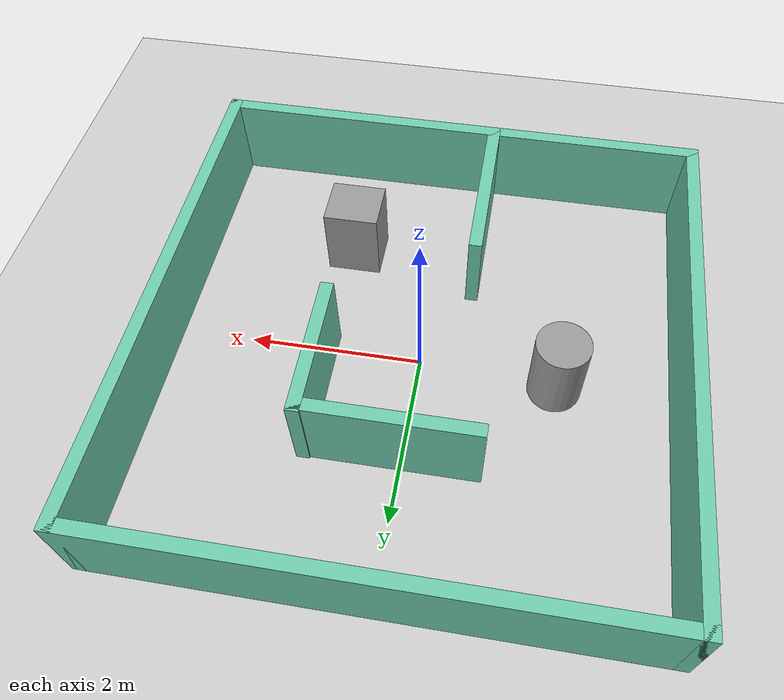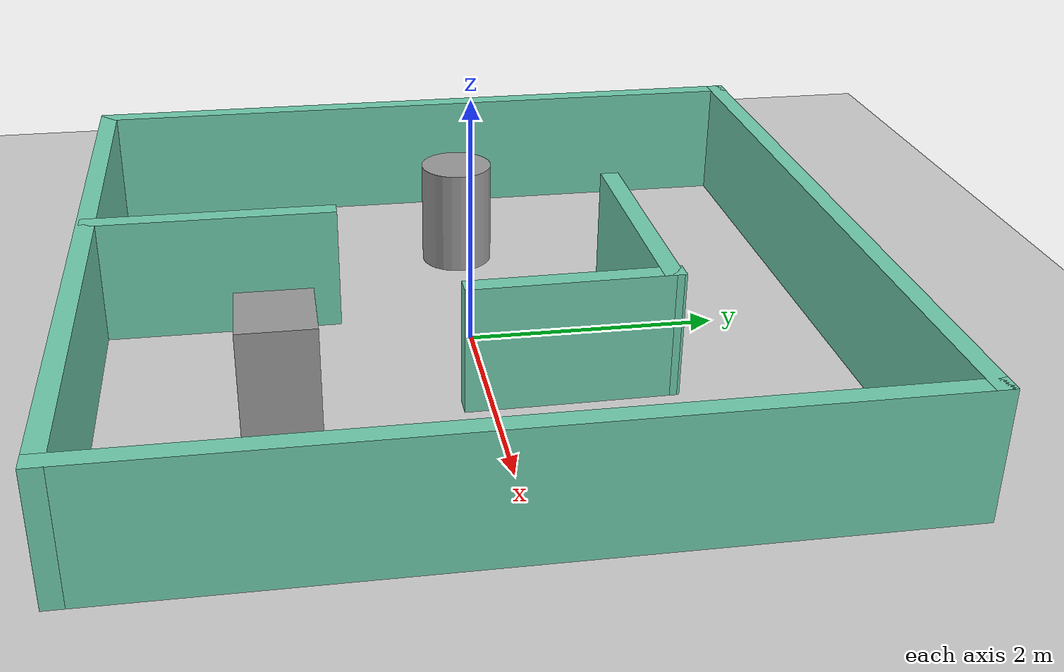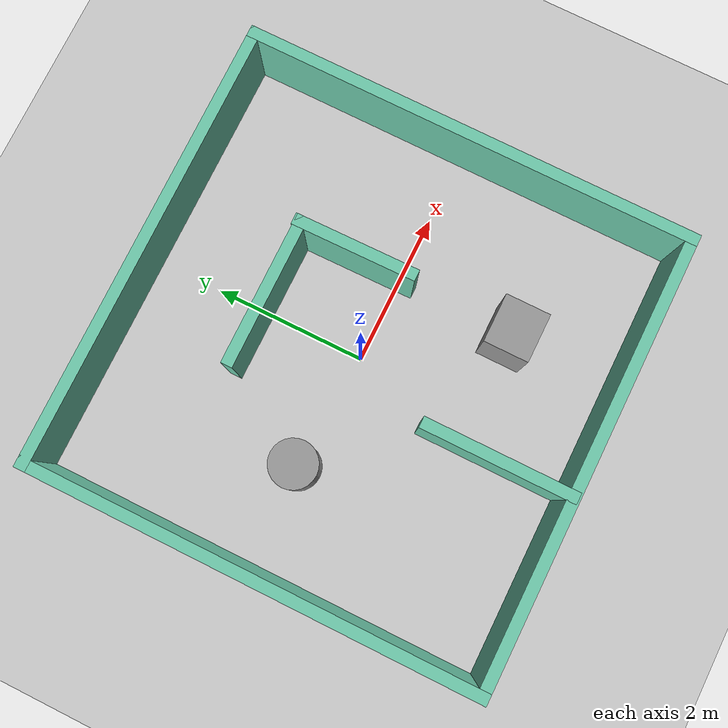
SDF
<sdf version="1.7">
 <world name="default">
  <light name="sun" type="directional">
   <pose>0 0 10 0 -0 0</pose>
   <diffuse>0.8 0.8 0.8 1</diffuse>
   <specular>0.2 0.2 0.2 1</specular>
   <attenuation>
    <range>1000</range>
    <constant>0.9</constant>
    <linear>0.01</linear>
    <quadratic>0.001</quadratic>
   </attenuation>
   <direction>-0.5 0.1 -0.9</direction>
   <spot><inner_angle>0</inner_angle><outer_angle>0</outer_angle><falloff>0</falloff></spot>
  </light>
  <model name="ground_plane">
   <static>1</static>
   <link name="link">
    <collision name="collision">
     <geometry><plane><normal>0 0 1</normal><size>100 100</size></plane></geometry>
     <surface>
      <contact><collide_bitmask>65535</collide_bitmask></contact>
      <friction><ode><mu>100</mu><mu2>50</mu2></ode></friction>
     </surface>
    </collision>
    <visual name="visual">
     <cast_shadows>0</cast_shadows>
     <geometry><plane><normal>0 0 1</normal><size>100 100</size></plane></geometry>
     <material>
      <script><uri>file://media/materials/scripts/gazebo.material</uri><name>Gazebo/Grey</name></script>
     </material>
    </visual>
   </link>
  </model>
  <gravity>0 0 -9.8</gravity>
  <magnetic_field>6e-06 2.3e-05 -4.2e-05</magnetic_field>
  <atmosphere type="adiabatic"/>
  <physics type="ode">
   <max_step_size>0.001</max_step_size>
   <real_time_factor>1</real_time_factor>
   <real_time_update_rate>1000</real_time_update_rate>
  </physics>
  <scene><ambient>0.4 0.4 0.4 1</ambient><background>0.7 0.7 0.7 1</background><shadows>1</shadows></scene>
  <spherical_coordinates>
   <surface_model>EARTH_WGS84</surface_model>
   <latitude_deg>0</latitude_deg>
   <longitude_deg>0</longitude_deg>
   <elevation>0</elevation>
   <heading_deg>0</heading_deg>
  </spherical_coordinates>
  <model name="training_gazebo_place">
   <pose>-0.006 -0.034 0 0 -0 0</pose>
   <link name="Wall_0">
    <collision name="Wall_0_Collision">
     <geometry><box><size>6 0.15 1</size></box></geometry>
     <pose>0 0 0.5 0 -0 0</pose>
    </collision>
    <visual name="Wall_0_Visual">
     <pose>0 0 0.5 0 -0 0</pose>
     <geometry><box><size>6 0.15 1</size></box></geometry>
     <material>
      <script><uri>file://media/materials/scripts/gazebo.material</uri><name>Gazebo/Grey</name></script>
      <ambient>0.435294 0.796078 0.67451 1</ambient>
     </material>
     <meta><layer>0</layer></meta>
    </visual>
    <pose>0 -2.925 0 0 -0 0</pose>
   </link>
   <link name="Wall_14">
    <collision name="Wall_14_Collision">
     <geometry><box><size>2 0.15 1</size></box></geometry>
     <pose>0 0 0.5 0 -0 0</pose>
    </collision>
    <visual name="Wall_14_Visual">
     <pose>0 0 0.5 0 -0 0</pose>
     <geometry><box><size>2 0.15 1</size></box></geometry>
     <material>
      <script><uri>file://media/materials/scripts/gazebo.material</uri><name>Gazebo/Grey</name></script>
      <ambient>0.435294 0.796078 0.67451 1</ambient>
     </material>
     <meta><layer>0</layer></meta>
    </visual>
    <pose>0.12408 1.34848 0 0 -0 0</pose>
   </link>
   <link name="Wall_15">
    <collision name="Wall_15_Collision">
     <geometry><box><size>1.62424 0.15 1</size></box></geometry>
     <pose>0 0 0.5 0 -0 0</pose>
    </collision>
    <visual name="Wall_15_Visual">
     <pose>0 0 0.5 0 -0 0</pose>
     <geometry><box><size>1.62424 0.15 1</size></box></geometry>
     <material>
      <script><uri>file://media/materials/scripts/gazebo.material</uri><name>Gazebo/Grey</name></script>
      <ambient>0.435294 0.796078 0.67451 1</ambient>
     </material>
     <meta><layer>0</layer></meta>
    </visual>
    <pose>1.05783 0.629147 0 0 -0 -1.55893</pose>
   </link>
   <link name="Wall_2">
    <collision name="Wall_2_Collision">
     <geometry><box><size>6 0.15 1</size></box></geometry>
     <pose>0 0 0.5 0 -0 0</pose>
    </collision>
    <visual name="Wall_2_Visual">
     <pose>0 0 0.5 0 -0 0</pose>
     <geometry><box><size>6 0.15 1</size></box></geometry>
     <material>
      <script><uri>file://media/materials/scripts/gazebo.material</uri><name>Gazebo/Grey</name></script>
      <ambient>0.435294 0.796078 0.67451 1</ambient>
     </material>
     <meta><layer>0</layer></meta>
    </visual>
    <pose>-2.925 -0 0 0 -0 1.5708</pose>
   </link>
   <link name="Wall_3">
    <collision name="Wall_3_Collision">
     <geometry><box><size>6 0.15 1</size></box></geometry>
     <pose>0 0 0.5 0 -0 0</pose>
    </collision>
    <visual name="Wall_3_Visual">
     <pose>0 0 0.5 0 -0 0</pose>
     <geometry><box><size>6 0.15 1</size></box></geometry>
     <material>
      <script><uri>file://media/materials/scripts/gazebo.material</uri><name>Gazebo/Grey</name></script>
      <ambient>0.435294 0.796078 0.67451 1</ambient>
     </material>
     <meta><layer>0</layer></meta>
    </visual>
    <pose>0 2.925 0 0 -0 0</pose>
   </link>
   <link name="Wall_4">
    <collision name="Wall_4_Collision">
     <geometry><box><size>6 0.15 1</size></box></geometry>
     <pose>0 0 0.5 0 -0 0</pose>
    </collision>
    <visual name="Wall_4_Visual">
     <pose>0 0 0.5 0 -0 0</pose>
     <geometry><box><size>6 0.15 1</size></box></geometry>
     <material>
      <script><uri>file://media/materials/scripts/gazebo.material</uri><name>Gazebo/Grey</name></script>
      <ambient>0.435294 0.796078 0.67451 1</ambient>
     </material>
     <meta><layer>0</layer></meta>
    </visual>
    <pose>2.925 -0 0 0 -0 -1.5708</pose>
   </link>
   <link name="Wall_8">
    <collision name="Wall_8_Collision">
     <geometry><box><size>2 0.15 1</size></box></geometry>
     <pose>0 0 0.5 0 -0 0</pose>
    </collision>
    <visual name="Wall_8_Visual">
     <pose>0 0 0.5 0 -0 0</pose>
     <geometry><box><size>2 0.15 1</size></box></geometry>
     <material>
      <script><uri>file://media/materials/scripts/gazebo.material</uri><name>Gazebo/Grey</name></script>
      <ambient>0.435294 0.796078 0.67451 1</ambient>
     </material>
     <meta><layer>0</layer></meta>
    </visual>
    <pose>-0.46251 -1.97802 0 0 -0 1.5708</pose>
   </link>
   <static>1</static>
  </model>
  <model name="unit_cylinder">
   <pose>-1.55613 0.106707 0.443024 0 -0 0</pose>
   <link name="link">
    <inertial>
     <mass>1</mass>
     <inertia><ixx>0.145833</ixx><ixy>0</ixy><ixz>0</ixz><iyy>0.145833</iyy><iyz>0</iyz><izz>0.125</izz></inertia>
    </inertial>
    <collision name="collision">
     <geometry><cylinder><radius>0.303713</radius><length>0.886063</length></cylinder></geometry>
    </collision>
    <visual name="visual">
     <geometry><cylinder><radius>0.303713</radius><length>0.886063</length></cylinder></geometry>
     <material>
      <script><name>Gazebo/Grey</name><uri>file://media/materials/scripts/gazebo.material</uri></script>
     </material>
    </visual>
   </link>
  </model>
  <model name="unit_box">
   <pose>1.04222 -1.547 0.446689 -0 -0 -0.000133</pose>
   <link name="link">
    <inertial>
     <mass>1</mass>
     <inertia>
      <ixx>0.166667</ixx>
      <ixy>0</ixy>
      <ixz>0</ixz>
      <iyy>0.166667</iyy>
      <iyz>0</iyz>
      <izz>0.166667</izz>
     </inertia>
    </inertial>
    <collision name="collision">
     <geometry><box><size>0.636461 0.579314 0.893377</size></box></geometry>
    </collision>
    <visual name="visual">
     <geometry><box><size>0.636461 0.579314 0.893377</size></box></geometry>
     <material>
      <script><name>Gazebo/Grey</name><uri>file://media/materials/scripts/gazebo.material</uri></script>
     </material>
    </visual>
   </link>
  </model>
  <light name="user_point_light_0" type="point">
   <pose>-1.99623 1.95589 1 0 -0 0</pose>
   <diffuse>0.5 0.5 0.5 1</diffuse>
   <specular>0.1 0.1 0.1 1</specular>
   <attenuation>
    <range>20</range>
    <constant>0.5</constant>
    <linear>0.01</linear>
    <quadratic>0.001</quadratic>
   </attenuation>
   <cast_shadows>0</cast_shadows>
   <direction>0 0 -1</direction>
  </light>
  <light name="user_point_light_1" type="point">
   <pose>2.78829 -2.47934 1 0 -0 0</pose>
   <diffuse>0.5 0.5 0.5 1</diffuse>
   <specular>0.1 0.1 0.1 1</specular>
   <attenuation>
    <range>20</range>
    <constant>0.5</constant>
    <linear>0.01</linear>
    <quadratic>0.001</quadratic>
   </attenuation>
   <cast_shadows>0</cast_shadows>
   <direction>0 0 -1</direction>
  </light>
 </world>
</sdf>
